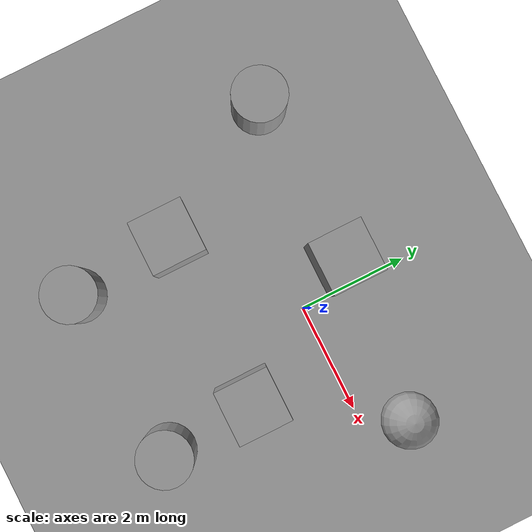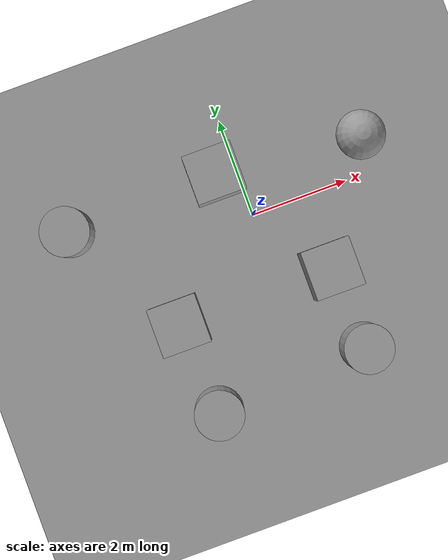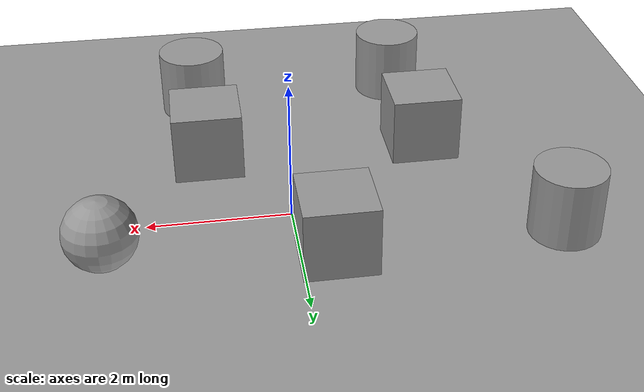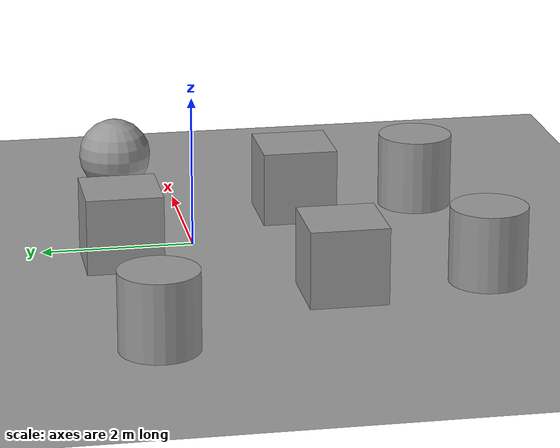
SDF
<sdf version="1.6">
 <world name="default">
  <light name="sun" type="directional">
   <pose>0 0 10 0 -0 0</pose>
   <diffuse>0.8 0.8 0.8 1</diffuse>
   <specular>0.2 0.2 0.2 1</specular>
   <attenuation>
    <range>1000</range>
    <constant>0.9</constant>
    <linear>0.01</linear>
    <quadratic>0.001</quadratic>
   </attenuation>
   <direction>0.5 0.1 -0.9</direction>
  </light>
  <scene><ambient>0.4 0.4 0.4 1</ambient><background>0.7 0.7 0.7 1</background><shadows>1</shadows></scene>
  <physics name="default_physics" default="0" type="ode">
   <max_step_size>0.01</max_step_size>
   <real_time_factor>1</real_time_factor>
   <real_time_update_rate>100</real_time_update_rate>
  </physics>
  <model name="ground_plane_0">
   <static>1</static>
   <link name="link">
    <collision name="collision">
     <geometry><plane><normal>0 0 1</normal><size>100 100</size></plane></geometry>
     <surface><friction><ode><mu>100</mu><mu2>50</mu2></ode></friction></surface>
    </collision>
    <visual name="visual">
     <cast_shadows>0</cast_shadows>
     <geometry><plane><normal>0 0 1</normal><size>100 100</size></plane></geometry>
     <material>
      <script><uri>file://media/materials/scripts/gazebo.material</uri><name>Gazebo/Grey</name></script>
     </material>
    </visual>
    <velocity_decay><linear>0</linear><angular>0</angular></velocity_decay>
   </link>
   <pose>0.497681 0 0 0 -0 0</pose>
  </model>
  <model name="unit_cylinder_1">
   <pose>-2 -3.4888 0.49912 -0 -0 -0</pose>
   <link name="link">
    <inertial>
     <mass>1</mass>
     <inertia><ixx>1</ixx><ixy>0</ixy><ixz>0</ixz><iyy>1</iyy><iyz>0</iyz><izz>1</izz></inertia>
    </inertial>
    <collision name="collision">
     <geometry><cylinder><radius>0.5</radius><length>1</length></cylinder></geometry>
    </collision>
    <visual name="visual">
     <geometry><cylinder><radius>0.5</radius><length>1</length></cylinder></geometry>
     <material>
      <script><uri>file://media/materials/scripts/gazebo.material</uri><name>Gazebo/Grey</name></script>
     </material>
    </visual>
    <velocity_decay><linear>0</linear><angular>0</angular></velocity_decay>
   </link>
   <static>0</static>
  </model>
  <gravity>0 0 -9.8</gravity>
  <magnetic_field>6e-06 2.3e-05 -4.2e-05</magnetic_field>
  <atmosphere type="adiabatic"/>
  <audio><device>default</device></audio>
  <spherical_coordinates>
   <surface_model>EARTH_WGS84</surface_model>
   <latitude_deg>0</latitude_deg>
   <longitude_deg>0</longitude_deg>
   <elevation>0</elevation>
   <heading_deg>0</heading_deg>
  </spherical_coordinates>
  <model name="unit_cylinder">
   <pose>1.19228 -3.27363 0.499824 -0.000249 -0.000249 -8e-06</pose>
   <link name="link">
    <inertial>
     <mass>1</mass>
     <inertia><ixx>0.145833</ixx><ixy>0</ixy><ixz>0</ixz><iyy>0.145833</iyy><iyz>0</iyz><izz>0.125</izz></inertia>
    </inertial>
    <collision name="collision">
     <geometry><cylinder><radius>0.5</radius><length>1</length></cylinder></geometry>
    </collision>
    <visual name="visual">
     <geometry><cylinder><radius>0.5</radius><length>1</length></cylinder></geometry>
     <material>
      <script><name>Gazebo/Grey</name><uri>file://media/materials/scripts/gazebo.material</uri></script>
     </material>
    </visual>
   </link>
  </model>
  <model name="unit_box">
   <pose>-2.14343 -1.57357 0.499802 -0.000397 -0 0</pose>
   <link name="link">
    <inertial>
     <mass>1</mass>
     <inertia>
      <ixx>0.166667</ixx>
      <ixy>0</ixy>
      <ixz>0</ixz>
      <iyy>0.166667</iyy>
      <iyz>0</iyz>
      <izz>0.166667</izz>
     </inertia>
    </inertial>
    <collision name="collision"><geometry><box><size>1 1 1</size></box></geometry></collision>
    <visual name="visual">
     <geometry><box><size>1 1 1</size></box></geometry>
     <material>
      <script><name>Gazebo/Grey</name><uri>file://media/materials/scripts/gazebo.material</uri></script>
     </material>
    </visual>
   </link>
  </model>
  <model name="unit_box_0">
   <pose>1.0673 -1.55391 0.49907 0.0001 -0 0</pose>
   <link name="link">
    <inertial>
     <mass>1</mass>
     <inertia>
      <ixx>0.166667</ixx>
      <ixy>0</ixy>
      <ixz>0</ixz>
      <iyy>0.166667</iyy>
      <iyz>0</iyz>
      <izz>0.166667</izz>
     </inertia>
    </inertial>
    <collision name="collision"><geometry><box><size>1 1 1</size></box></geometry></collision>
    <visual name="visual">
     <geometry><box><size>1 1 1</size></box></geometry>
     <material>
      <script><name>Gazebo/Grey</name><uri>file://media/materials/scripts/gazebo.material</uri></script>
     </material>
    </visual>
   </link>
  </model>
  <model name="unit_box_1">
   <pose>-0.470068 1.00227 0.49967 0.00066 -0 0</pose>
   <link name="link">
    <inertial>
     <mass>1</mass>
     <inertia>
      <ixx>0.166667</ixx>
      <ixy>0</ixy>
      <ixz>0</ixz>
      <iyy>0.166667</iyy>
      <iyz>0</iyz>
      <izz>0.166667</izz>
     </inertia>
    </inertial>
    <collision name="collision"><geometry><box><size>1 1 1</size></box></geometry></collision>
    <visual name="visual">
     <geometry><box><size>1 1 1</size></box></geometry>
     <material>
      <script><name>Gazebo/Grey</name><uri>file://media/materials/scripts/gazebo.material</uri></script>
     </material>
    </visual>
   </link>
  </model>
  <model name="unit_cylinder_0">
   <pose>-3.60443 0.918384 0.499824 -0.000249 -0.000249 -2e-06</pose>
   <link name="link">
    <inertial>
     <mass>1</mass>
     <inertia><ixx>0.145833</ixx><ixy>0</ixy><ixz>0</ixz><iyy>0.145833</iyy><iyz>0</iyz><izz>0.125</izz></inertia>
    </inertial>
    <collision name="collision">
     <geometry><cylinder><radius>0.5</radius><length>1</length></cylinder></geometry>
    </collision>
    <visual name="visual">
     <geometry><cylinder><radius>0.5</radius><length>1</length></cylinder></geometry>
     <material>
      <script><name>Gazebo/Grey</name><uri>file://media/materials/scripts/gazebo.material</uri></script>
     </material>
    </visual>
   </link>
  </model>
  <model name="unit_sphere">
   <pose>2.5417 0.741866 0.5 0 -0 0</pose>
   <link name="link">
    <inertial>
     <mass>1</mass>
     <inertia><ixx>0.1</ixx><ixy>0</ixy><ixz>0</ixz><iyy>0.1</iyy><iyz>0</iyz><izz>0.1</izz></inertia>
    </inertial>
    <collision name="collision"><geometry><sphere><radius>0.5</radius></sphere></geometry></collision>
    <visual name="visual">
     <geometry><sphere><radius>0.5</radius></sphere></geometry>
     <material>
      <script><name>Gazebo/Grey</name><uri>file://media/materials/scripts/gazebo.material</uri></script>
     </material>
    </visual>
   </link>
  </model>
 </world>
</sdf>
